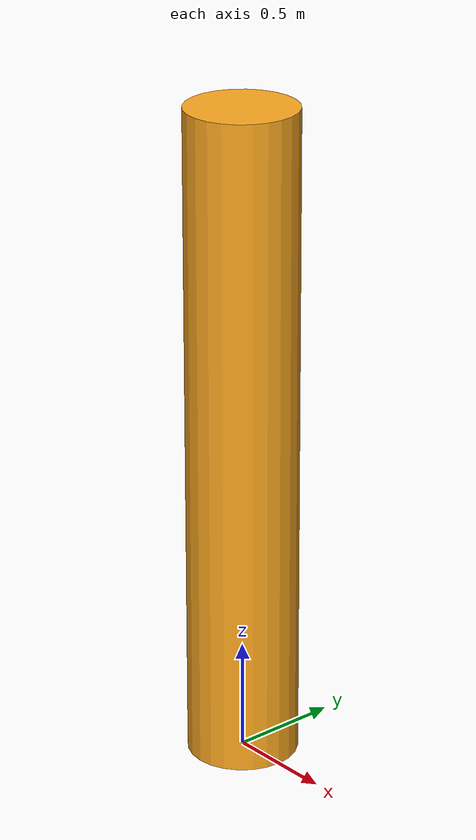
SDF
<?xml version='1.0'?>
<sdf version='1.6'>

  <model name='orange_pole'>

    <pose>0 0 1.5 0 0 0</pose>
    <link name='pole'>
      <inertial>
        <mass>1</mass>
        <inertia>
          <ixx>0.145833</ixx>
          <iyy>0.145833</iyy>
          <izz>0.125</izz>
          <ixy>0</ixy>
          <ixz>0</ixz>
          <iyz>0</iyz>
        </inertia>
      </inertial>

      <gravity>0</gravity>
      <self_collide>0</self_collide>
      <kinematic>0</kinematic>
      <enable_wind>true</enable_wind>

      <visual name='pole_visual'>
        <geometry>
          <cylinder>
            <radius>0.25</radius>
            <length>3</length>
          </cylinder>
        </geometry>
        <material>
          <lighting>1</lighting>
          <script>
            <uri>file://media/materials/scripts/gazebo.material</uri>
            <name>Gazebo/Grey</name>
          </script>
          <shader type='vertex'>
            <normal_map>__default__</normal_map>
          </shader>
          <ambient>0.88 0.59 0.11 1</ambient>
          <diffuse>0.99 0.66 0.12 1</diffuse>
          <specular>0.01 0.01 0.01 1</specular>
          <emissive>0 0 0 1</emissive>

        </material>
        <transparency>0</transparency>
        <cast_shadows>1</cast_shadows>
      </visual>

      <collision name='collision'>
        <geometry>
          <cylinder>
            <radius>0.25</radius>
            <length>3</length>
          </cylinder>
        </geometry>
      </collision>
    </link>

    <static>0</static>

    <!-- Dynamic obstacle plugin -->
  </model>
</sdf>
